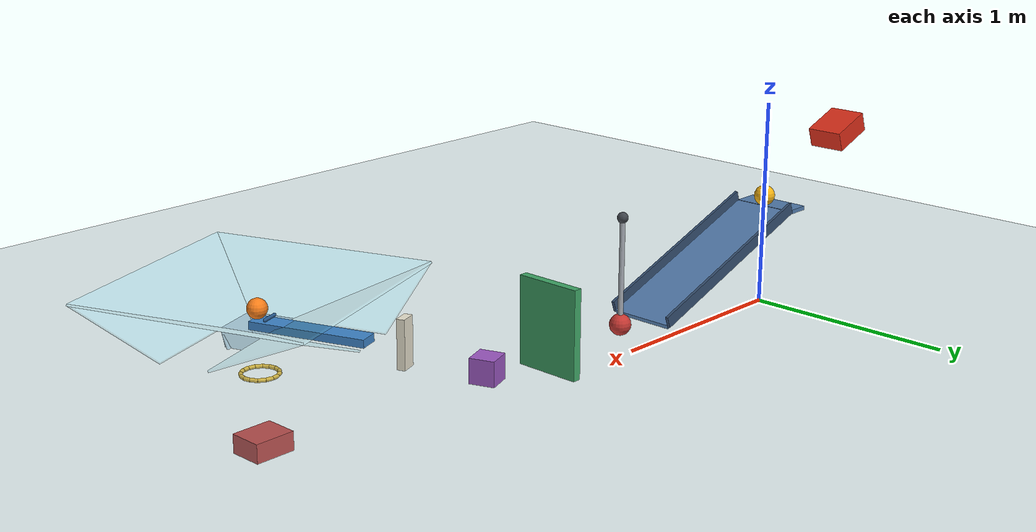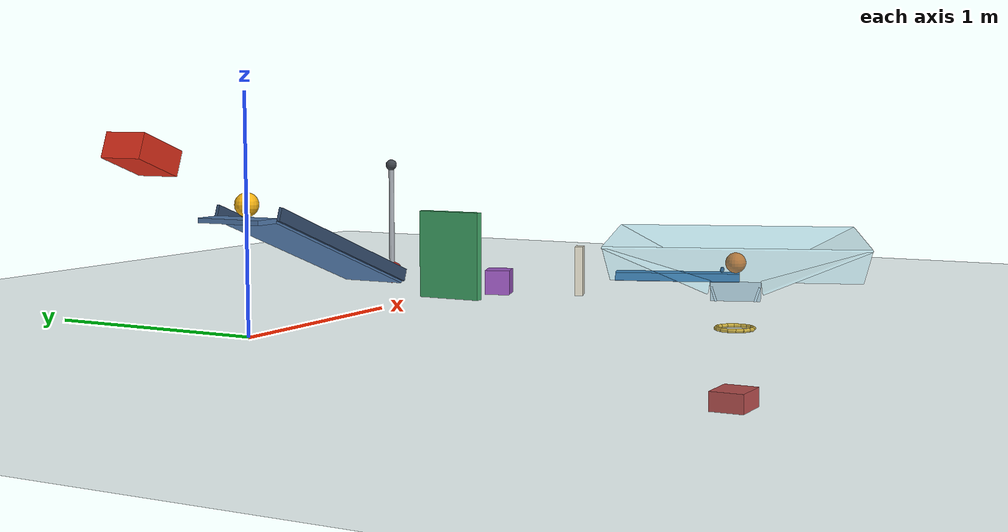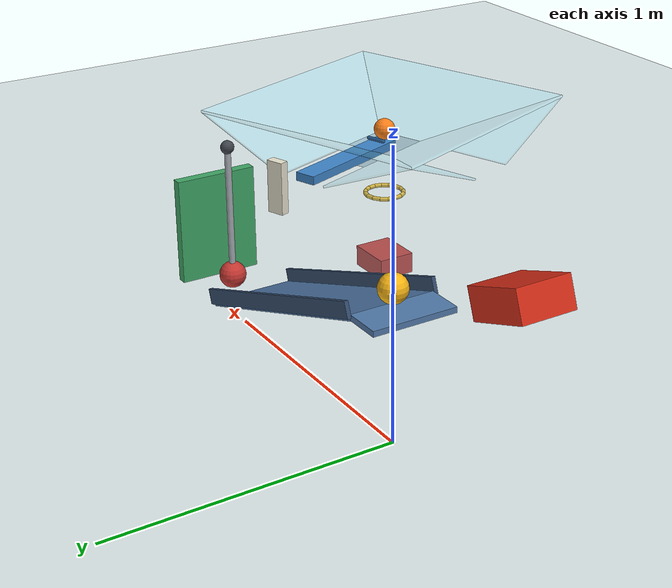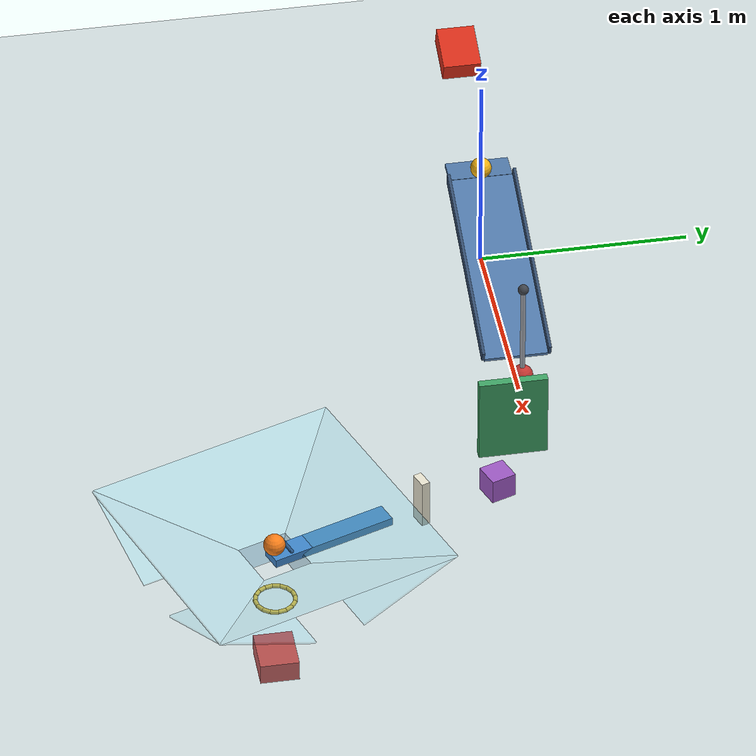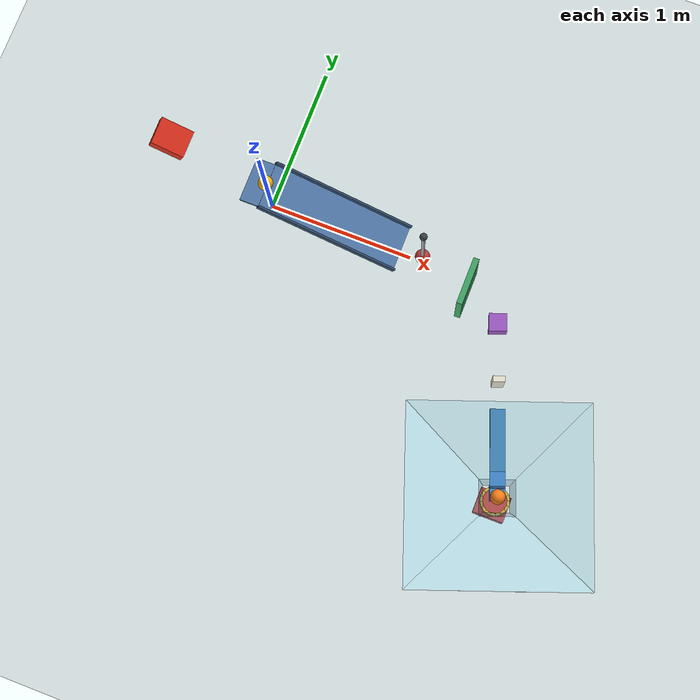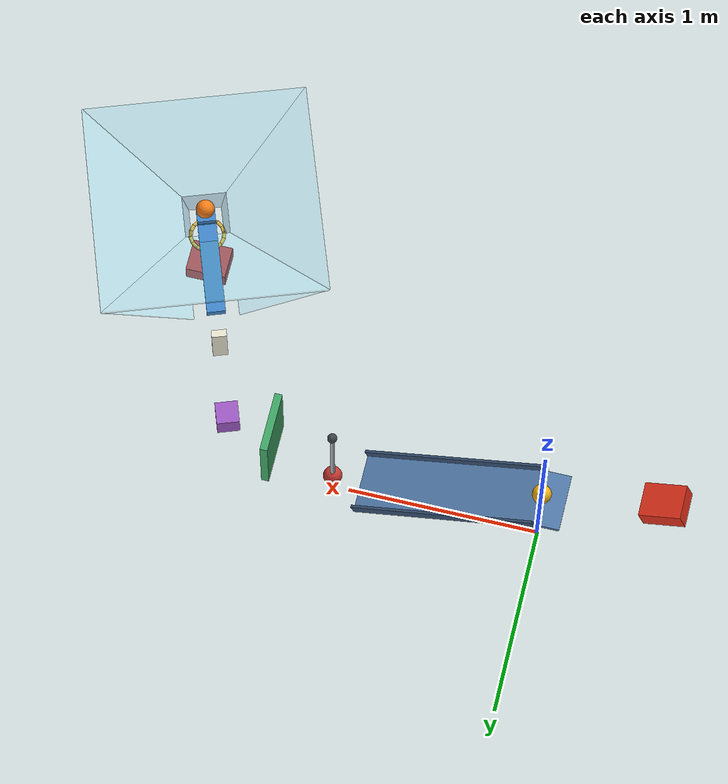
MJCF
<mujoco model="revised_chain_corrected_gap">
  <compiler angle="degree" autolimits="true"/>
  <option timestep="0.002" gravity="0 0 -9.81" integrator="implicitfast" solver="Newton" iterations="100" tolerance="1e-10"/>
  <size njmax="5000" nconmax="1000"/>
  <visual>
    <global azimuth="135" elevation="-20"/>
    <quality shadowsize="2048"/>
  </visual>

  <!-- Restitution 0.05 is approximated through contact damping ratio 0.69. -->
  <!-- Hinge damping is 0.04; slide damping is 0.20. -->
  <!-- Actuators provide bounded displacement-dependent assistance without additional damping. -->
  <!-- Collision filtering represents an open well beneath the launching mechanism. -->
  <!-- This scene has not been simulation-validated. -->

  <worldbody>
    <light name="main_light" pos="0 -3 5" dir="0 0 -1" diffuse="0.8 0.8 0.8"/>
    <light name="fill_light" pos="4 3 3" dir="-1 -1 -1" diffuse="0.4 0.4 0.4"/>
    <camera name="overview" pos="4.5 -5 3" xyaxes="0.7809 0.6247 0 -0.2714 0.3393 0.9006"/>

    <geom name="floor" type="plane" pos="0 0 0" size="5 4 0.1" contype="1" conaffinity="1" condim="6" friction="0.68 0.005 0.0015" solref="0.006 0.69" solimp="0.95 0.99 0.001" rgba="0.55 0.59 0.62 0.28"/>

    <!-- The cart center is initially 0.66 m behind ball1 along its axial direction. -->
    <!-- Subtracting cart half-length 0.11 and ball radius 0.05 gives 0.50 m clearance. -->
    <body name="cart1" pos="-0.62019713 0 0.76775344" quat="0.984807753 0 0.173648178 0">
      <joint name="cart1_slide" type="slide" axis="1 0 0" damping="0.20" limited="true" range="0 0.57" solreflimit="0.004 1"/>
      <geom name="cart1_chassis" type="box" size="0.11 0.09 0.05" mass="0.50" contype="1" conaffinity="1" condim="6" friction="0.68 0.005 0.0015" solref="0.006 0.69" solimp="0.95 0.99 0.001" rgba="0.85 0.18 0.10 1"/>
    </body>

    <!-- Principal ramp surface: length 1.00 m, width 0.30 m, inclination 20 degrees. -->
    <!-- High edge is (0,0,0.49202014); low edge is (0.93969262,0,0.15). -->
    <!-- A horizontal staging surface supports ball1 at the high edge until cart1 arrives. -->
    <body name="ramp1" pos="0 0 0">
      <geom name="ramp1_surface" type="box" pos="0.466426109 0 0.311613144" quat="0.984807753 0 0.173648178 0" size="0.50 0.15 0.01" contype="1" conaffinity="1" condim="6" friction="0.68 0.005 0.0015" solref="0.006 0.69" solimp="0.95 0.99 0.001" rgba="0.32 0.48 0.67 1"/>
      <geom name="ramp1_staging_shelf" type="box" pos="-0.060 0 0.48202014" size="0.065 0.15 0.01" contype="1" conaffinity="1" condim="6" friction="0.68 0.005 0.0015" solref="0.006 0.69" solimp="0.95 0.99 0.001" rgba="0.32 0.48 0.67 1"/>
      <geom name="ramp1_left_rail" type="box" pos="0.476002673 -0.157 0.337924537" quat="0.984807753 0 0.173648178 0" size="0.50 0.007 0.028" contype="1" conaffinity="1" condim="3" friction="0.68 0.005 0.0015" solref="0.006 0.69" solimp="0.95 0.99 0.001" rgba="0.20 0.30 0.43 1"/>
      <geom name="ramp1_right_rail" type="box" pos="0.476002673 0.157 0.337924537" quat="0.984807753 0 0.173648178 0" size="0.50 0.007 0.028" contype="1" conaffinity="1" condim="3" friction="0.68 0.005 0.0015" solref="0.006 0.69" solimp="0.95 0.99 0.001" rgba="0.20 0.30 0.43 1"/>
    </body>

    <body name="ball1" pos="0 0 0.54202014">
      <freejoint name="ball1_free"/>
      <geom name="ball1_sphere" type="sphere" size="0.05" mass="0.20" contype="1" conaffinity="1" condim="6" friction="0.68 0.005 0.0015" solref="0.006 0.69" solimp="0.95 0.99 0.001" rgba="0.98 0.72 0.08 1"/>
    </body>

    <!-- Initial bob center x=1.08969262; near surface x=1.03969262. -->
    <!-- Clear horizontal gap from the ramp low edge is therefore 0.10 m. -->
    <!-- Pivot-to-bob length is 0.50 m; total moving mass is 0.35 kg. -->
    <body name="pendulum1" pos="1.08969262 0 0.657">
      <joint name="pendulum1_hinge" type="hinge" axis="0 -1 0" damping="0.04" limited="true" range="0 40" solreflimit="0.003 1"/>
      <geom name="pendulum1_rod" type="capsule" fromto="0 0 0 0 0 -0.50" size="0.012" mass="0.04" contype="1" conaffinity="1" condim="3" friction="0.68 0.005 0.0015" solref="0.006 0.69" solimp="0.95 0.99 0.001" rgba="0.65 0.67 0.70 1"/>
      <geom name="pendulum1_bob" type="sphere" pos="0 0 -0.50" size="0.05" mass="0.30" contype="1" conaffinity="1" condim="6" friction="0.68 0.005 0.0015" solref="0.006 0.69" solimp="0.95 0.99 0.001" rgba="0.78 0.22 0.20 1"/>
      <geom name="pendulum1_hub" type="sphere" size="0.025" mass="0.01" contype="0" conaffinity="0" rgba="0.25 0.27 0.30 1"/>
    </body>

    <!-- Panel: height 0.42 m, width 0.32 m, thickness 0.04 m. -->
    <!-- Negative z-axis rotation is clockwise from above. -->
    <body name="door1" pos="1.441 -0.270 0.210">
      <joint name="door1_hinge" type="hinge" axis="0 0 1" damping="0.04" limited="true" range="-70 0" solreflimit="0.003 1"/>
      <geom name="door1_panel" type="box" pos="0 0.16 0" size="0.02 0.16 0.21" mass="0.45" contype="1" conaffinity="1" condim="6" friction="0.68 0.005 0.0015" solref="0.006 0.69" solimp="0.95 0.99 0.001" rgba="0.25 0.65 0.40 1"/>
    </body>

    <!-- Auxiliary prismatic mount prevents block tipping while retaining its required freejoint. -->
    <body name="block1_driver" pos="1.713528116 -0.229337656 0.060" quat="0.819152044 0 0 -0.573576436">
      <inertial pos="0 0 0" mass="0.001" diaginertia="0.000001 0.000001 0.000001"/>
      <joint name="block1_driver_slide" type="slide" axis="1 0 0" damping="0.20" limited="true" range="0 0.32" solreflimit="0.002 1"/>
    </body>

    <body name="block1" pos="1.713528116 -0.229337656 0.060" quat="0.819152044 0 0 -0.573576436">
      <freejoint name="block1_free"/>
      <geom name="block1_cube" type="box" size="0.06 0.06 0.06" mass="0.35" contype="1" conaffinity="1" condim="6" friction="0.68 0.005 0.0015" solref="0.006 0.69" solimp="0.95 0.99 0.001" rgba="0.62 0.35 0.77 1"/>
    </body>

    <!-- Block forward-face contact occurs after 0.32 m translation. -->
    <body name="domino1" pos="1.850336173 -0.605214704 0.120" quat="0.819152044 0 0 -0.573576436">
      <freejoint name="domino1_free"/>
      <geom name="domino1_slab" type="box" size="0.02 0.04 0.12" mass="0.25" contype="4" conaffinity="3" condim="6" friction="0.68 0.005 0.0015" solref="0.006 0.69" solimp="0.95 0.99 0.001" rgba="0.92 0.90 0.82 1"/>
    </body>

    <!-- Left tip is 0.18 m beyond domino1's initial center along the chain direction. -->
    <!-- Beam dimensions are 0.60 by 0.10 by 0.04 m. -->
    <!-- Beam plus retaining lip mass is 0.50 kg. -->
    <body name="lever1" pos="2.014505841 -1.056267162 0.100" quat="0.819152044 0 0 -0.573576436">
      <joint name="lever1_hinge" type="hinge" axis="0 -1 0" damping="0.04" limited="true" range="0 45" solreflimit="0.003 1"/>
      <geom name="lever1_beam" type="box" size="0.30 0.05 0.02" mass="0.497" contype="2" conaffinity="20" condim="6" friction="0.68 0.005 0.0015" solref="0.006 0.69" solimp="0.95 0.99 0.001" rgba="0.25 0.53 0.80 1"/>
      <geom name="lever1_ball_retaining_lip" type="capsule" fromto="0.215 -0.042 0.035 0.215 0.042 0.035" size="0.009" mass="0.003" contype="2" conaffinity="20" condim="6" friction="0.68 0.005 0.0015" solref="0.006 0.69" solimp="0.95 0.99 0.001" rgba="0.16 0.35 0.55 1"/>
    </body>

    <body name="ball2" pos="2.110271481 -1.319381096 0.170">
      <freejoint name="ball2_free"/>
      <geom name="ball2_sphere" type="sphere" size="0.05" mass="0.20" contype="16" conaffinity="98" condim="6" friction="0.68 0.005 0.0015" solref="0.006 0.69" solimp="0.95 0.99 0.001" rgba="0.98 0.50 0.10 1"/>
    </body>

    <!-- Passive funnel redirects ball2 toward the vertically aligned ring. -->
    <!-- Funnel collision group 64 interacts only with ball2. -->
    <body name="ball2_catch_funnel" pos="2.110271481 -1.319381096 0" quat="0.819152044 0 0 -0.573576436">
      <geom name="ball2_catch_funnel_outer_positive_u" type="box" pos="0.361923 0 0.195385" quat="0.980580676 0 -0.196116135 0" size="0.26 0.60 0.005" contype="64" conaffinity="16" condim="6" friction="0.68 0.005 0.0015" solref="0.006 0.69" solimp="0.95 0.99 0.001" rgba="0.35 0.65 0.75 0.35"/>
      <geom name="ball2_catch_funnel_outer_negative_u" type="box" pos="-0.361923 0 0.195385" quat="0.980580676 0 0.196116135 0" size="0.26 0.60 0.005" contype="64" conaffinity="16" condim="6" friction="0.68 0.005 0.0015" solref="0.006 0.69" solimp="0.95 0.99 0.001" rgba="0.35 0.65 0.75 0.35"/>
      <geom name="ball2_catch_funnel_outer_positive_v" type="box" pos="0 0.361923 0.195385" quat="0.980580676 0.196116135 0 0" size="0.60 0.26 0.005" contype="64" conaffinity="16" condim="6" friction="0.68 0.005 0.0015" solref="0.006 0.69" solimp="0.95 0.99 0.001" rgba="0.35 0.65 0.75 0.35"/>
      <geom name="ball2_catch_funnel_outer_negative_v" type="box" pos="0 -0.361923 0.195385" quat="0.980580676 -0.196116135 0 0" size="0.60 0.26 0.005" contype="64" conaffinity="16" condim="6" friction="0.68 0.005 0.0015" solref="0.006 0.69" solimp="0.95 0.99 0.001" rgba="0.35 0.65 0.75 0.35"/>
      <geom name="ball2_catch_funnel_inner_positive_u" type="box" pos="0.090777 0 -0.011477" quat="0.80477 0 -0.59359 0" size="0.115135 0.12 0.005" contype="64" conaffinity="16" condim="6" friction="0.68 0.005 0.0015" solref="0.006 0.69" solimp="0.95 0.99 0.001" rgba="0.25 0.50 0.65 0.45"/>
      <geom name="ball2_catch_funnel_inner_negative_u" type="box" pos="-0.090777 0 -0.011477" quat="0.80477 0 0.59359 0" size="0.115135 0.12 0.005" contype="64" conaffinity="16" condim="6" friction="0.68 0.005 0.0015" solref="0.006 0.69" solimp="0.95 0.99 0.001" rgba="0.25 0.50 0.65 0.45"/>
      <geom name="ball2_catch_funnel_inner_positive_v" type="box" pos="0 0.090777 -0.011477" quat="0.80477 0.59359 0 0" size="0.12 0.115135 0.005" contype="64" conaffinity="16" condim="6" friction="0.68 0.005 0.0015" solref="0.006 0.69" solimp="0.95 0.99 0.001" rgba="0.25 0.50 0.65 0.45"/>
      <geom name="ball2_catch_funnel_inner_negative_v" type="box" pos="0 -0.090777 -0.011477" quat="0.80477 -0.59359 0 0" size="0.12 0.115135 0.005" contype="64" conaffinity="16" condim="6" friction="0.68 0.005 0.0015" solref="0.006 0.69" solimp="0.95 0.99 0.001" rgba="0.25 0.50 0.65 0.45"/>
    </body>

    <!-- Ring center is 0.32 m vertically below ball2's initial center. -->
    <!-- Capsule segments approximate a horizontal ring with 0.16 m minimum clear diameter. -->
    <body name="ring1" pos="2.110271481 -1.319381096 -0.150">
      <geom name="ring1_segment_00" type="capsule" fromto="0.091763 0 0 0.084778 0.035116 0" size="0.01" contype="2" conaffinity="16" condim="3" friction="0.68 0.005 0.0015" solref="0.006 0.69" solimp="0.95 0.99 0.001" rgba="0.95 0.78 0.15 1"/>
      <geom name="ring1_segment_01" type="capsule" fromto="0.084778 0.035116 0 0.064887 0.064887 0" size="0.01" contype="2" conaffinity="16" condim="3" friction="0.68 0.005 0.0015" solref="0.006 0.69" solimp="0.95 0.99 0.001" rgba="0.95 0.78 0.15 1"/>
      <geom name="ring1_segment_02" type="capsule" fromto="0.064887 0.064887 0 0.035116 0.084778 0" size="0.01" contype="2" conaffinity="16" condim="3" friction="0.68 0.005 0.0015" solref="0.006 0.69" solimp="0.95 0.99 0.001" rgba="0.95 0.78 0.15 1"/>
      <geom name="ring1_segment_03" type="capsule" fromto="0.035116 0.084778 0 0 0.091763 0" size="0.01" contype="2" conaffinity="16" condim="3" friction="0.68 0.005 0.0015" solref="0.006 0.69" solimp="0.95 0.99 0.001" rgba="0.95 0.78 0.15 1"/>
      <geom name="ring1_segment_04" type="capsule" fromto="0 0.091763 0 -0.035116 0.084778 0" size="0.01" contype="2" conaffinity="16" condim="3" friction="0.68 0.005 0.0015" solref="0.006 0.69" solimp="0.95 0.99 0.001" rgba="0.95 0.78 0.15 1"/>
      <geom name="ring1_segment_05" type="capsule" fromto="-0.035116 0.084778 0 -0.064887 0.064887 0" size="0.01" contype="2" conaffinity="16" condim="3" friction="0.68 0.005 0.0015" solref="0.006 0.69" solimp="0.95 0.99 0.001" rgba="0.95 0.78 0.15 1"/>
      <geom name="ring1_segment_06" type="capsule" fromto="-0.064887 0.064887 0 -0.084778 0.035116 0" size="0.01" contype="2" conaffinity="16" condim="3" friction="0.68 0.005 0.0015" solref="0.006 0.69" solimp="0.95 0.99 0.001" rgba="0.95 0.78 0.15 1"/>
      <geom name="ring1_segment_07" type="capsule" fromto="-0.084778 0.035116 0 -0.091763 0 0" size="0.01" contype="2" conaffinity="16" condim="3" friction="0.68 0.005 0.0015" solref="0.006 0.69" solimp="0.95 0.99 0.001" rgba="0.95 0.78 0.15 1"/>
      <geom name="ring1_segment_08" type="capsule" fromto="-0.091763 0 0 -0.084778 -0.035116 0" size="0.01" contype="2" conaffinity="16" condim="3" friction="0.68 0.005 0.0015" solref="0.006 0.69" solimp="0.95 0.99 0.001" rgba="0.95 0.78 0.15 1"/>
      <geom name="ring1_segment_09" type="capsule" fromto="-0.084778 -0.035116 0 -0.064887 -0.064887 0" size="0.01" contype="2" conaffinity="16" condim="3" friction="0.68 0.005 0.0015" solref="0.006 0.69" solimp="0.95 0.99 0.001" rgba="0.95 0.78 0.15 1"/>
      <geom name="ring1_segment_10" type="capsule" fromto="-0.064887 -0.064887 0 -0.035116 -0.084778 0" size="0.01" contype="2" conaffinity="16" condim="3" friction="0.68 0.005 0.0015" solref="0.006 0.69" solimp="0.95 0.99 0.001" rgba="0.95 0.78 0.15 1"/>
      <geom name="ring1_segment_11" type="capsule" fromto="-0.035116 -0.084778 0 0 -0.091763 0" size="0.01" contype="2" conaffinity="16" condim="3" friction="0.68 0.005 0.0015" solref="0.006 0.69" solimp="0.95 0.99 0.001" rgba="0.95 0.78 0.15 1"/>
      <geom name="ring1_segment_12" type="capsule" fromto="0 -0.091763 0 0.035116 -0.084778 0" size="0.01" contype="2" conaffinity="16" condim="3" friction="0.68 0.005 0.0015" solref="0.006 0.69" solimp="0.95 0.99 0.001" rgba="0.95 0.78 0.15 1"/>
      <geom name="ring1_segment_13" type="capsule" fromto="0.035116 -0.084778 0 0.064887 -0.064887 0" size="0.01" contype="2" conaffinity="16" condim="3" friction="0.68 0.005 0.0015" solref="0.006 0.69" solimp="0.95 0.99 0.001" rgba="0.95 0.78 0.15 1"/>
      <geom name="ring1_segment_14" type="capsule" fromto="0.064887 -0.064887 0 0.084778 -0.035116 0" size="0.01" contype="2" conaffinity="16" condim="3" friction="0.68 0.005 0.0015" solref="0.006 0.69" solimp="0.95 0.99 0.001" rgba="0.95 0.78 0.15 1"/>
      <geom name="ring1_segment_15" type="capsule" fromto="0.084778 -0.035116 0 0.091763 0 0" size="0.01" contype="2" conaffinity="16" condim="3" friction="0.68 0.005 0.0015" solref="0.006 0.69" solimp="0.95 0.99 0.001" rgba="0.95 0.78 0.15 1"/>
    </body>

    <!-- Lower guide contacts only ball2 and does not constrain its launch. -->
    <body name="ball2_lower_guide" pos="2.110271481 -1.319381096 0">
      <geom name="ball2_lower_guide_positive_x" type="capsule" fromto="0.059 0 -0.46 0.059 0 -0.20" size="0.007" contype="32" conaffinity="16" condim="3" friction="0.68 0.005 0.0015" solref="0.006 0.69" solimp="0.95 0.99 0.001" rgba="0.65 0.75 0.85 0.25"/>
      <geom name="ball2_lower_guide_negative_x" type="capsule" fromto="-0.059 0 -0.46 -0.059 0 -0.20" size="0.007" contype="32" conaffinity="16" condim="3" friction="0.68 0.005 0.0015" solref="0.006 0.69" solimp="0.95 0.99 0.001" rgba="0.65 0.75 0.85 0.25"/>
      <geom name="ball2_lower_guide_positive_y" type="capsule" fromto="0 0.059 -0.46 0 0.059 -0.20" size="0.007" contype="32" conaffinity="16" condim="3" friction="0.68 0.005 0.0015" solref="0.006 0.69" solimp="0.95 0.99 0.001" rgba="0.65 0.75 0.85 0.25"/>
      <geom name="ball2_lower_guide_negative_y" type="capsule" fromto="0 -0.059 -0.46 0 -0.059 -0.20" size="0.007" contype="32" conaffinity="16" condim="3" friction="0.68 0.005 0.0015" solref="0.006 0.69" solimp="0.95 0.99 0.001" rgba="0.65 0.75 0.85 0.25"/>
    </body>

    <!-- Deck z=-0.45 gives ball-center contact at z=-0.40, 0.25 m below ring center. -->
    <body name="cart2" pos="2.110271481 -1.319381096 -0.500">
      <joint name="cart2_slide" type="slide" axis="1 0 0" damping="0.20" limited="true" range="-0.10 0.10" solreflimit="0.004 1"/>
      <geom name="cart2_chassis" type="box" size="0.11 0.09 0.05" mass="0.50" contype="2" conaffinity="16" condim="6" friction="0.68 0.005 0.0015" solref="0.006 0.69" solimp="0.95 0.99 0.001" rgba="0.80 0.20 0.18 1"/>
    </body>
  </worldbody>

  <!-- Compression spring: stiffness 18 N/m, initial compression 0.20 m. -->
  <!-- The dead band models loss of spring force after full extension. -->
  <tendon>
    <fixed name="cart1_axial_spring" stiffness="18" damping="0" springlength="0.20 1.00">
      <joint joint="cart1_slide" coef="1"/>
    </fixed>
  </tendon>

  <equality>
    <weld name="block1_prismatic_mount" body1="block1" body2="block1_driver" relpose="0 0 0 1 0 0 0" solref="0.002 1" solimp="0.99 0.999 0.0001"/>
  </equality>

  <!-- Powered displacement feedback, with zero velocity-feedback coefficients. -->
  <actuator>
    <general name="pendulum1_assist" joint="pendulum1_hinge" gear="1" gaintype="fixed" gainprm="0" biastype="affine" biasprm="0 4 0" forcelimited="true" forcerange="-2 2"/>
    <general name="door1_assist" joint="door1_hinge" gear="1" gaintype="fixed" gainprm="0" biastype="affine" biasprm="0 2 0" forcelimited="true" forcerange="-0.2 0.2"/>
    <general name="block1_assist" joint="block1_driver_slide" gear="1" gaintype="fixed" gainprm="0" biastype="affine" biasprm="0 200 0" forcelimited="true" forcerange="-3 3"/>
    <general name="lever1_assist" joint="lever1_hinge" gear="1" gaintype="fixed" gainprm="0" biastype="affine" biasprm="0 12 0" forcelimited="true" forcerange="-0.8 0.8"/>
  </actuator>

  <!-- Reference positions and zero velocities initialize every body at rest. -->
  <keyframe>
    <key name="start" time="0" ctrl="0 0 0 0"/>
  </keyframe>
</mujoco>
